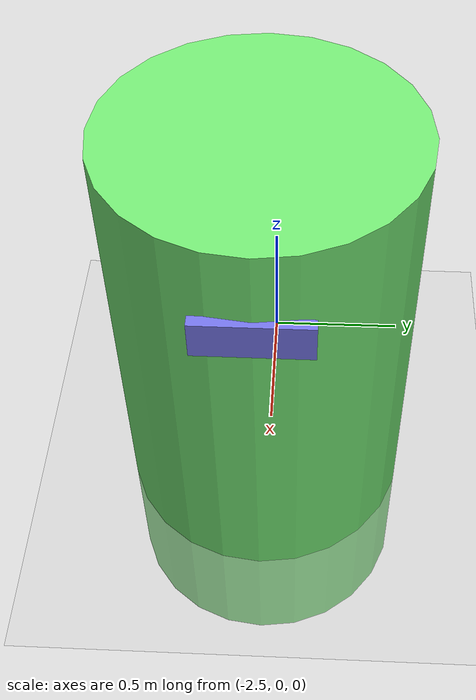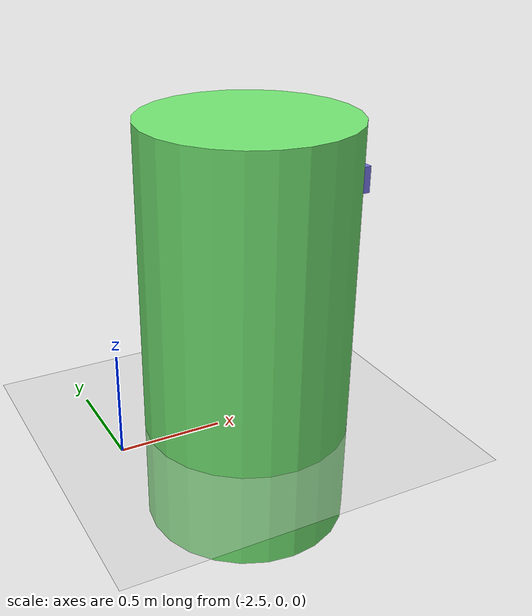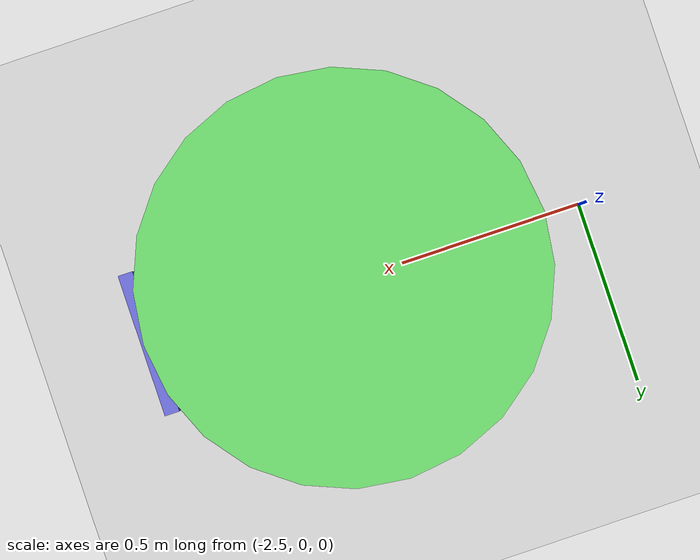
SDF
<?xml version="1.0" ?>
<sdf version="1.6">
  <world name="flat">

    <plugin
      filename="gz-sim-physics-system"
      name="gz::sim::systems::Physics">
    </plugin>
    <plugin
      filename="gz-sim-user-commands-system"
      name="gz::sim::systems::UserCommands">
    </plugin>
    <plugin
      filename="gz-sim-scene-broadcaster-system"
      name="gz::sim::systems::SceneBroadcaster">
    </plugin>
    <plugin
      filename="gz-sim-contact-system"
      name="gz::sim::systems::Contact">
    </plugin>

    <physics type="ode">
      <real_time_update_rate>1000.0</real_time_update_rate>
      <max_step_size>0.001</max_step_size>
      <real_time_factor>1</real_time_factor>
      <ode>
        <solver>
          <type>quick</type>
          <iters>150</iters>
          <precon_iters>0</precon_iters>
          <sor>1.400000</sor>
          <use_dynamic_moi_rescaling>1</use_dynamic_moi_rescaling>
        </solver>
        <constraints>
          <cfm>0.00001</cfm>
          <erp>0.2</erp>
          <contact_max_correcting_vel>2000.000000</contact_max_correcting_vel>
          <contact_surface_layer>0.01000</contact_surface_layer>
        </constraints>
      </ode>
    </physics>

    <include>
      <uri>
        https://fuel.gazebosim.org/1.0/OpenRobotics/models/Ground Plane
      </uri>
    </include>

    <include>
      <uri>
        https://fuel.gazebosim.org/1.0/OpenRobotics/models/Sun
      </uri>
      <pose>2 -10 10 0.8 -0.8 0</pose>
    </include>

    <spherical_coordinates>
      <surface_model>EARTH_WGS84</surface_model>
      <latitude_deg>38.406863</latitude_deg>
      <longitude_deg>-110.791055</longitude_deg>
      <elevation>1370.0</elevation>
      <heading_deg>180</heading_deg>
    </spherical_coordinates>

    <!-- Random features for visual odometry and obstacle avoidance -->

    <model name='rocket_panel'>
      <pose>-1.85 -0.01 0.5 0 -0 0</pose>
      <link name='link'>
        <inertial>
          <mass>10</mass>
          <inertia>
            <ixx>1.45833</ixx>
            <ixy>0</ixy>
            <ixz>0</ixz>
            <iyy>1.45833</iyy>
            <iyz>0</iyz>
            <izz>1.25</izz>
          </inertia>
          <pose>0 0 0 0 -0 0</pose>
        </inertial>
        <collision name='frame_collision'>
          <geometry>
            <cylinder>
              <radius>0.5</radius>
              <length>2</length>
            </cylinder>
          </geometry>
          <max_contacts>10</max_contacts>
          <surface>
            <contact>
              <ode/>
            </contact>
            <bounce/>
            <friction>
              <torsional>
                <ode/>
              </torsional>
              <ode/>
            </friction>
          </surface>
        </collision>
        <visual name='frame_visual'>
          <geometry>
            <cylinder>
              <radius>0.5</radius>
              <length>2</length>
            </cylinder>
          </geometry>
          <material>
            <ambient>0.4 0.4 0.4 1</ambient>
            <diffuse>0.45 0.9 0.45 1</diffuse>
            <specular>0 0 0 0</specular>
            <emissive>0 0 0 1</emissive>
          </material>
        </visual>
        <collision name='keyboard_collision'>
          <pose> 0.5 0 0.7 0 1.5708 0 </pose>
          <geometry>
            <box>
              <size>0.123 0.357 0.037</size>
            </box>
          </geometry>
          <max_contacts>10</max_contacts>
          <surface>
            <contact>
              <ode/>
            </contact>
            <bounce/>
            <friction>
              <torsional>
                <ode/>
              </torsional>
              <ode/>
            </friction>
          </surface>
        </collision>
        <visual name='keyboard_visual'>
          <pose> 0.5 0 0.7 0 1.5708 0 </pose>
          <geometry>
            <box>
              <size>0.123 0.357 0.037</size>
            </box>
          </geometry>
          <material>
            <ambient>0.4 0.4 0.4 1</ambient>
            <diffuse>0.45 0.45 0.9 1</diffuse>
            <specular>0 0 0 0</specular>
            <emissive>0 0 0 1</emissive>
          </material>
        </visual>
        <self_collide>0</self_collide>
        <enable_wind>0</enable_wind>
        <kinematic>0</kinematic>
      </link>
    </model>

    <scene>
      <shadows>true</shadows>
    </scene>

    <gui fullscreen='0'>
      <camera name='user_camera'>
        <pose frame=''>0 0 15 0 1.570796 0</pose>
        <view_controller>orbit</view_controller>
        <projection_type>perspective</projection_type>
      </camera>
    </gui>

  </world>
</sdf>
